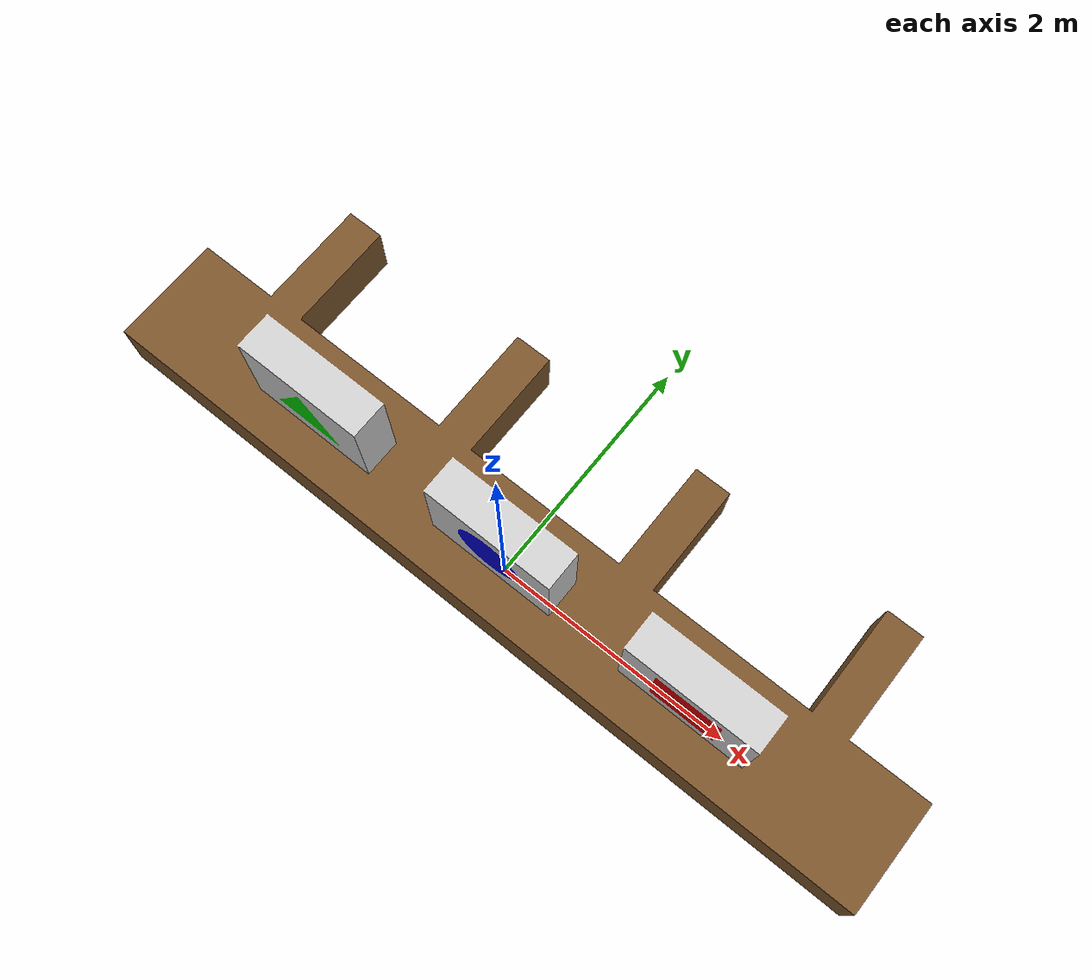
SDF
<?xml version="1.0" ?>
<sdf version="1.6">
  <model name="ShowSeats">
    <link name="ShowSeatsl">
      <pose>0 0 0 0 0 0</pose>
      <velocity_decay>
        <linear>0.001</linear>
        <angular>0.001</angular>
      </velocity_decay>
      <inertial>
        <pose>0 0 -10 0 0 0</pose>
        <mass>10</mass>
        <inertia>
          <ixx>10</ixx>
          <ixy>0</ixy>
          <ixz>0</ixz>
          <iyy>10</iyy>
          <iyz>0</iyz>
          <izz>10</izz>
        </inertia>
      </inertial>
      <collision name="ShowSeatsc">
        <geometry>
	  <mesh><uri>model://ShowSeats/mesh/ShowSeats.dae</uri></mesh>
          <cylinder>
            <radius>0.25</radius>
            <length>1.0</length>
          </cylinder>
        </geometry>
      </collision>
      <visual name="ShowSeatsv">
        <geometry>
	<mesh><uri>model://ShowSeats/mesh/ShowSeats.dae</uri></mesh>
        </geometry>
      </visual>
    </link>
  </model>
</sdf>
